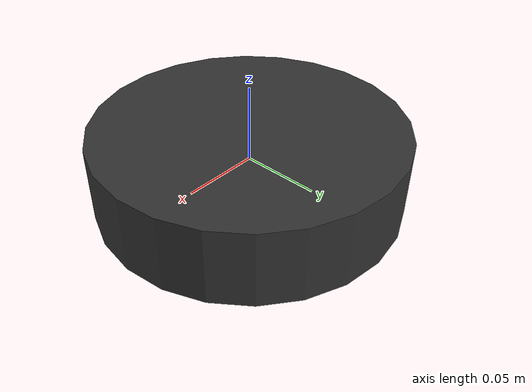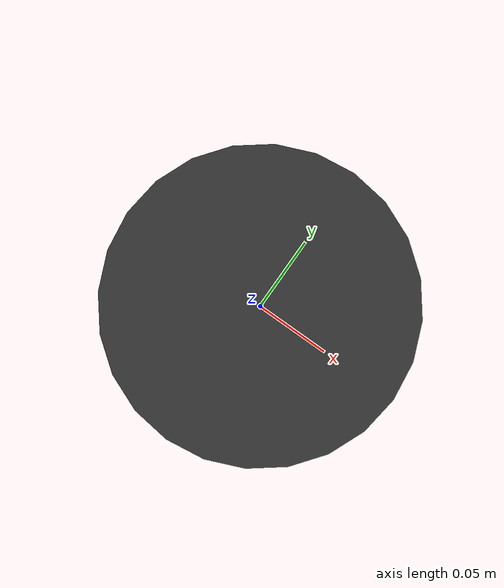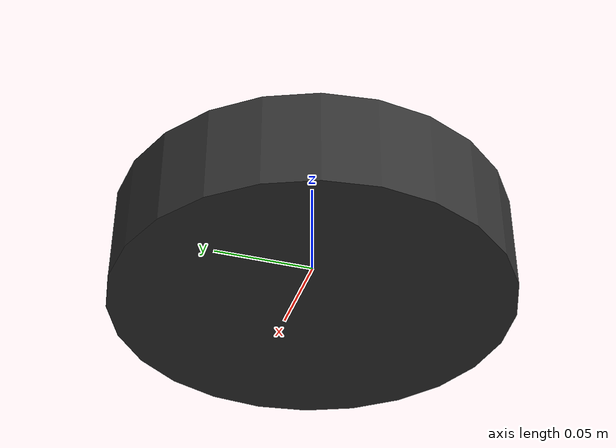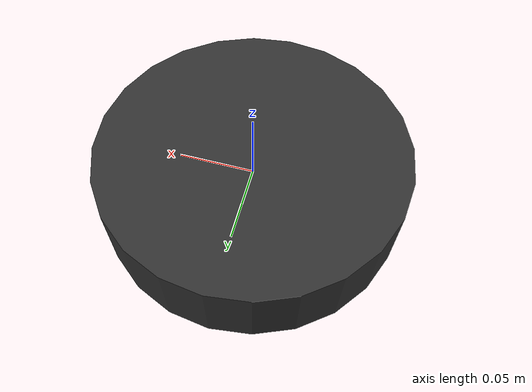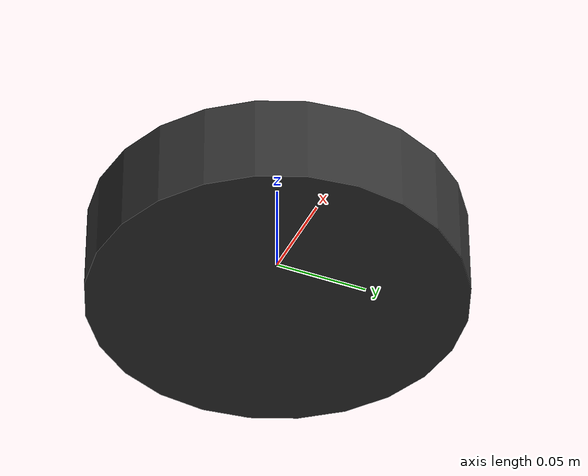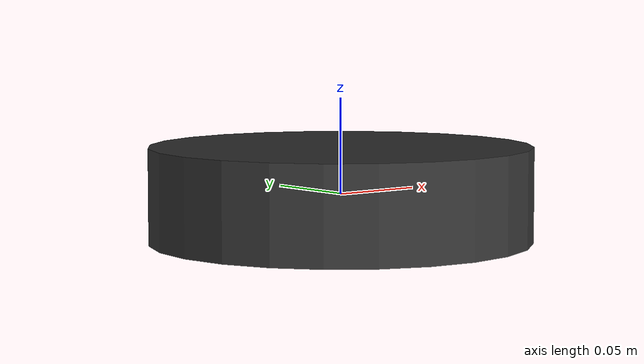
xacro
<?xml version="1.0"?>
<robot name="swarm_drone" xmlns:xacro="http://ros.org/wiki/xacro">

  <xacro:arg name="drone_name" default="alpha"/>
  <xacro:property name="base_mass" value="0.5"/>
  <xacro:property name="base_radius" value="0.1"/>
  <xacro:property name="base_height" value="0.05"/>

  <xacro:macro name="cylinder_inertia" params="m r h">
    <inertial>
      <mass value="${m}"/>
      <inertia ixx="${(m/12) * (3*r*r + h*h)}" ixy="0.0" ixz="0.0"
               iyy="${(m/12) * (3*r*r + h*h)}" iyz="0.0"
               izz="${(m/2) * (r*r)}"/>
    </inertial>
  </xacro:macro>

  <link name="dummy_link"/>
  <joint name="dummy_joint" type="fixed">
    <parent link="dummy_link"/>
    <child link="base_link"/>
  </joint>

  <link name="base_link">
    <visual>
      <geometry><cylinder radius="${base_radius}" length="${base_height}"/></geometry>
      <material name="carbon_fiber"><color rgba="0.2 0.2 0.2 1"/></material>
    </visual>
    <collision>
      <geometry><cylinder radius="${base_radius}" length="${base_height}"/></geometry>
    </collision>
    <xacro:cylinder_inertia m="${base_mass}" r="${base_radius}" h="${base_height}"/>
  </link>

  <link name="camera_link"/>
  <joint name="camera_joint" type="fixed">
    <parent link="base_link"/>
    <child link="camera_link"/>
    <origin xyz="0.1 0 0" rpy="0 0 0"/>
  </joint>

  <link name="lidar_link"/>
  <joint name="lidar_joint" type="fixed">
    <parent link="base_link"/>
    <child link="lidar_link"/>
    <origin xyz="0 0 0.05" rpy="0 0 0"/>
  </joint>

  <gazebo reference="camera_link">
    <sensor name="front_camera" type="camera">
      <camera>
        <horizontal_fov>1.5</horizontal_fov>
        <image><width>640</width><height>480</height></image>
        <clip><near>0.1</near><far>100</far></clip>
      </camera>
      <always_on>1</always_on>
      <update_rate>30</update_rate>
      <visualize>true</visualize>
      <topic>/$(arg drone_name)/camera/image_raw</topic>
    </sensor>
  </gazebo>

  <gazebo reference="lidar_link">
    <sensor name="lidar_sensor" type="gpu_lidar">
      <always_on>1</always_on>
      <update_rate>10</update_rate>
      <visualize>true</visualize>
      <topic>/$(arg drone_name)/scan</topic>
      <ray>
        <scan>
          <horizontal><samples>360</samples><resolution>1</resolution><min_angle>-3.14159</min_angle><max_angle>3.14159</max_angle></horizontal>
        </scan>
        <range><min>0.2</min><max>20.0</max><resolution>0.01</resolution></range>
      </ray>
    </sensor>
  </gazebo>

  <gazebo reference="base_link">
    <sensor name="imu_sensor" type="imu">
      <always_on>1</always_on>
      <update_rate>200</update_rate>
      <topic>imu/data</topic>
    </sensor>
  </gazebo>

  <gazebo>
    <plugin filename="gz-sim-imu-system" name="gz::sim::systems::Imu"/>
    <plugin filename="gz-sim-velocity-control-system" name="gz::sim::systems::VelocityControl">
      <link_name>base_link</link_name>
    </plugin>
    <plugin filename="gz-sim-odometry-publisher-system" name="gz::sim::systems::OdometryPublisher">
      <odom_frame>odom</odom_frame>
      <robot_base_frame>base_link</robot_base_frame>
    </plugin>
  </gazebo>

  <gazebo reference="base_link">
    <sensor name="gps_sensor" type="navsat">
      <always_on>1</always_on>
      <update_rate>10.0</update_rate>
      <topic>/model/alpha/navsat</topic>
    </sensor>
  </gazebo>
</robot>
